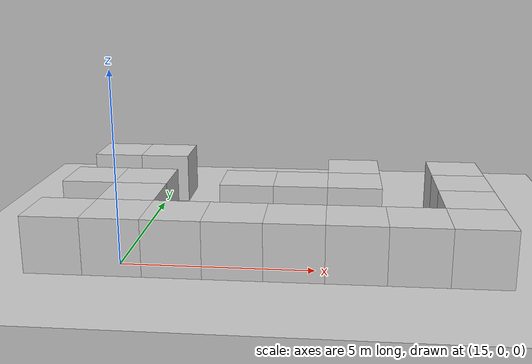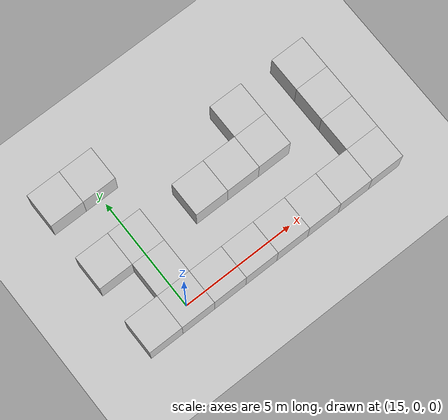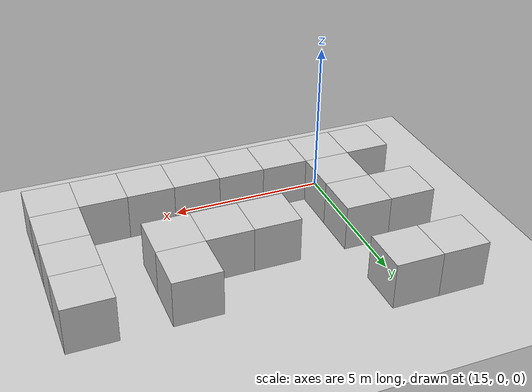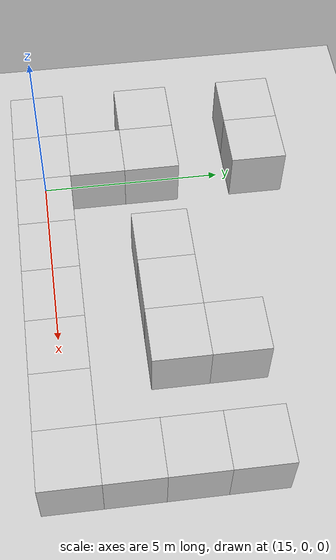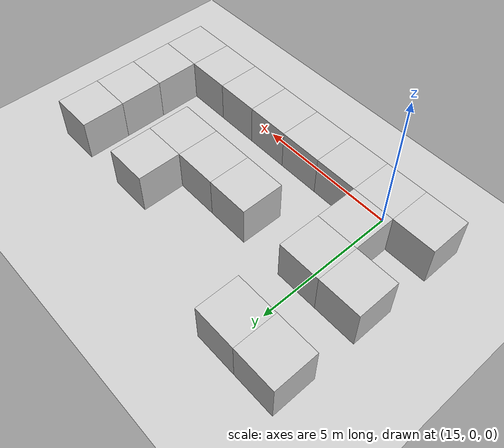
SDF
<sdf version="1.9">
 <world name="maze_world">
  <include><uri>https://fuel.gazebosim.org/1.0/OpenRobotics/models/Sun</uri></include>
  <include><uri>https://fuel.gazebosim.org/1.0/OpenRobotics/models/Ground Plane</uri></include>
  <model name="wall_9_0">
   <static>true</static>
   <pose>13.5 0 0.75 0 0 0</pose>
   <link name="link">
    <collision name="collision"><geometry><box><size>1.5 1.5 1.5</size></box></geometry></collision>
    <visual name="visual">
     <geometry><box><size>1.5 1.5 1.5</size></box></geometry>
     <material>
      <ambient>0.8 0.8 0.8 1</ambient>
      <diffuse>0.8 0.8 0.8 1</diffuse>
      <pbr>
       <metal>
        <albedo_map>file:///home/max/Repos/DHBW-Robotik/maze_runner_ws/src/maze_runner_gazebo/textures/simple_box.png</albedo_map>
        <roughness>0.9</roughness>
       </metal>
      </pbr>
     </material>
    </visual>
   </link>
  </model>
  <model name="wall_10_0">
   <static>true</static>
   <pose>15 0 0.75 0 0 0</pose>
   <link name="link">
    <collision name="collision"><geometry><box><size>1.5 1.5 1.5</size></box></geometry></collision>
    <visual name="visual">
     <geometry><box><size>1.5 1.5 1.5</size></box></geometry>
     <material>
      <ambient>0.8 0.8 0.8 1</ambient>
      <diffuse>0.8 0.8 0.8 1</diffuse>
      <pbr>
       <metal>
        <albedo_map>file:///home/max/Repos/DHBW-Robotik/maze_runner_ws/src/maze_runner_gazebo/textures/simple_box.png</albedo_map>
        <roughness>0.9</roughness>
       </metal>
      </pbr>
     </material>
    </visual>
   </link>
  </model>
  <model name="wall_11_0">
   <static>true</static>
   <pose>16.5 0 0.75 0 0 0</pose>
   <link name="link">
    <collision name="collision"><geometry><box><size>1.5 1.5 1.5</size></box></geometry></collision>
    <visual name="visual">
     <geometry><box><size>1.5 1.5 1.5</size></box></geometry>
     <material>
      <ambient>0.8 0.8 0.8 1</ambient>
      <diffuse>0.8 0.8 0.8 1</diffuse>
      <pbr>
       <metal>
        <albedo_map>file:///home/max/Repos/DHBW-Robotik/maze_runner_ws/src/maze_runner_gazebo/textures/simple_box.png</albedo_map>
        <roughness>0.9</roughness>
       </metal>
      </pbr>
     </material>
    </visual>
   </link>
  </model>
  <model name="wall_12_0">
   <static>true</static>
   <pose>18 0 0.75 0 0 0</pose>
   <link name="link">
    <collision name="collision"><geometry><box><size>1.5 1.5 1.5</size></box></geometry></collision>
    <visual name="visual">
     <geometry><box><size>1.5 1.5 1.5</size></box></geometry>
     <material>
      <ambient>0.8 0.8 0.8 1</ambient>
      <diffuse>0.8 0.8 0.8 1</diffuse>
      <pbr>
       <metal>
        <albedo_map>file:///home/max/Repos/DHBW-Robotik/maze_runner_ws/src/maze_runner_gazebo/textures/simple_box.png</albedo_map>
        <roughness>0.9</roughness>
       </metal>
      </pbr>
     </material>
    </visual>
   </link>
  </model>
  <model name="wall_13_0">
   <static>true</static>
   <pose>19.5 0 0.75 0 0 0</pose>
   <link name="link">
    <collision name="collision"><geometry><box><size>1.5 1.5 1.5</size></box></geometry></collision>
    <visual name="visual">
     <geometry><box><size>1.5 1.5 1.5</size></box></geometry>
     <material>
      <ambient>0.8 0.8 0.8 1</ambient>
      <diffuse>0.8 0.8 0.8 1</diffuse>
      <pbr>
       <metal>
        <albedo_map>file:///home/max/Repos/DHBW-Robotik/maze_runner_ws/src/maze_runner_gazebo/textures/simple_box.png</albedo_map>
        <roughness>0.9</roughness>
       </metal>
      </pbr>
     </material>
    </visual>
   </link>
  </model>
  <model name="wall_14_0">
   <static>true</static>
   <pose>21 0 0.75 0 0 0</pose>
   <link name="link">
    <collision name="collision"><geometry><box><size>1.5 1.5 1.5</size></box></geometry></collision>
    <visual name="visual">
     <geometry><box><size>1.5 1.5 1.5</size></box></geometry>
     <material>
      <ambient>0.8 0.8 0.8 1</ambient>
      <diffuse>0.8 0.8 0.8 1</diffuse>
      <pbr>
       <metal>
        <albedo_map>file:///home/max/Repos/DHBW-Robotik/maze_runner_ws/src/maze_runner_gazebo/textures/simple_box.png</albedo_map>
        <roughness>0.9</roughness>
       </metal>
      </pbr>
     </material>
    </visual>
   </link>
  </model>
  <model name="wall_15_0">
   <static>true</static>
   <pose>22.5 0 0.75 0 0 0</pose>
   <link name="link">
    <collision name="collision"><geometry><box><size>1.5 1.5 1.5</size></box></geometry></collision>
    <visual name="visual">
     <geometry><box><size>1.5 1.5 1.5</size></box></geometry>
     <material>
      <ambient>0.8 0.8 0.8 1</ambient>
      <diffuse>0.8 0.8 0.8 1</diffuse>
      <pbr>
       <metal>
        <albedo_map>file:///home/max/Repos/DHBW-Robotik/maze_runner_ws/src/maze_runner_gazebo/textures/simple_box.png</albedo_map>
        <roughness>0.9</roughness>
       </metal>
      </pbr>
     </material>
    </visual>
   </link>
  </model>
  <model name="wall_16_0">
   <static>true</static>
   <pose>24 0 0.75 0 0 0</pose>
   <link name="link">
    <collision name="collision"><geometry><box><size>1.5 1.5 1.5</size></box></geometry></collision>
    <visual name="visual">
     <geometry><box><size>1.5 1.5 1.5</size></box></geometry>
     <material>
      <ambient>0.8 0.8 0.8 1</ambient>
      <diffuse>0.8 0.8 0.8 1</diffuse>
      <pbr>
       <metal>
        <albedo_map>file:///home/max/Repos/DHBW-Robotik/maze_runner_ws/src/maze_runner_gazebo/textures/simple_box.png</albedo_map>
        <roughness>0.9</roughness>
       </metal>
      </pbr>
     </material>
    </visual>
   </link>
  </model>
  <model name="wall_10_1">
   <static>true</static>
   <pose>15 1.5 0.75 0 0 0</pose>
   <link name="link">
    <collision name="collision"><geometry><box><size>1.5 1.5 1.5</size></box></geometry></collision>
    <visual name="visual">
     <geometry><box><size>1.5 1.5 1.5</size></box></geometry>
     <material>
      <ambient>0.8 0.8 0.8 1</ambient>
      <diffuse>0.8 0.8 0.8 1</diffuse>
      <pbr>
       <metal>
        <albedo_map>file:///home/max/Repos/DHBW-Robotik/maze_runner_ws/src/maze_runner_gazebo/textures/simple_box.png</albedo_map>
        <roughness>0.9</roughness>
       </metal>
      </pbr>
     </material>
    </visual>
   </link>
  </model>
  <model name="wall_16_1">
   <static>true</static>
   <pose>24 1.5 0.75 0 0 0</pose>
   <link name="link">
    <collision name="collision"><geometry><box><size>1.5 1.5 1.5</size></box></geometry></collision>
    <visual name="visual">
     <geometry><box><size>1.5 1.5 1.5</size></box></geometry>
     <material>
      <ambient>0.8 0.8 0.8 1</ambient>
      <diffuse>0.8 0.8 0.8 1</diffuse>
      <pbr>
       <metal>
        <albedo_map>file:///home/max/Repos/DHBW-Robotik/maze_runner_ws/src/maze_runner_gazebo/textures/simple_box.png</albedo_map>
        <roughness>0.9</roughness>
       </metal>
      </pbr>
     </material>
    </visual>
   </link>
  </model>
  <model name="wall_9_2">
   <static>true</static>
   <pose>13.5 3 0.75 0 0 0</pose>
   <link name="link">
    <collision name="collision"><geometry><box><size>1.5 1.5 1.5</size></box></geometry></collision>
    <visual name="visual">
     <geometry><box><size>1.5 1.5 1.5</size></box></geometry>
     <material>
      <ambient>0.8 0.8 0.8 1</ambient>
      <diffuse>0.8 0.8 0.8 1</diffuse>
      <pbr>
       <metal>
        <albedo_map>file:///home/max/Repos/DHBW-Robotik/maze_runner_ws/src/maze_runner_gazebo/textures/simple_box.png</albedo_map>
        <roughness>0.9</roughness>
       </metal>
      </pbr>
     </material>
    </visual>
   </link>
  </model>
  <model name="wall_10_2">
   <static>true</static>
   <pose>15 3 0.75 0 0 0</pose>
   <link name="link">
    <collision name="collision"><geometry><box><size>1.5 1.5 1.5</size></box></geometry></collision>
    <visual name="visual">
     <geometry><box><size>1.5 1.5 1.5</size></box></geometry>
     <material>
      <ambient>0.8 0.8 0.8 1</ambient>
      <diffuse>0.8 0.8 0.8 1</diffuse>
      <pbr>
       <metal>
        <albedo_map>file:///home/max/Repos/DHBW-Robotik/maze_runner_ws/src/maze_runner_gazebo/textures/simple_box.png</albedo_map>
        <roughness>0.9</roughness>
       </metal>
      </pbr>
     </material>
    </visual>
   </link>
  </model>
  <model name="wall_12_2">
   <static>true</static>
   <pose>18 3 0.75 0 0 0</pose>
   <link name="link">
    <collision name="collision"><geometry><box><size>1.5 1.5 1.5</size></box></geometry></collision>
    <visual name="visual">
     <geometry><box><size>1.5 1.5 1.5</size></box></geometry>
     <material>
      <ambient>0.8 0.8 0.8 1</ambient>
      <diffuse>0.8 0.8 0.8 1</diffuse>
      <pbr>
       <metal>
        <albedo_map>file:///home/max/Repos/DHBW-Robotik/maze_runner_ws/src/maze_runner_gazebo/textures/simple_box.png</albedo_map>
        <roughness>0.9</roughness>
       </metal>
      </pbr>
     </material>
    </visual>
   </link>
  </model>
  <model name="wall_13_2">
   <static>true</static>
   <pose>19.5 3 0.75 0 0 0</pose>
   <link name="link">
    <collision name="collision"><geometry><box><size>1.5 1.5 1.5</size></box></geometry></collision>
    <visual name="visual">
     <geometry><box><size>1.5 1.5 1.5</size></box></geometry>
     <material>
      <ambient>0.8 0.8 0.8 1</ambient>
      <diffuse>0.8 0.8 0.8 1</diffuse>
      <pbr>
       <metal>
        <albedo_map>file:///home/max/Repos/DHBW-Robotik/maze_runner_ws/src/maze_runner_gazebo/textures/simple_box.png</albedo_map>
        <roughness>0.9</roughness>
       </metal>
      </pbr>
     </material>
    </visual>
   </link>
  </model>
  <model name="wall_14_2">
   <static>true</static>
   <pose>21 3 0.75 0 0 0</pose>
   <link name="link">
    <collision name="collision"><geometry><box><size>1.5 1.5 1.5</size></box></geometry></collision>
    <visual name="visual">
     <geometry><box><size>1.5 1.5 1.5</size></box></geometry>
     <material>
      <ambient>0.8 0.8 0.8 1</ambient>
      <diffuse>0.8 0.8 0.8 1</diffuse>
      <pbr>
       <metal>
        <albedo_map>file:///home/max/Repos/DHBW-Robotik/maze_runner_ws/src/maze_runner_gazebo/textures/simple_box.png</albedo_map>
        <roughness>0.9</roughness>
       </metal>
      </pbr>
     </material>
    </visual>
   </link>
  </model>
  <model name="wall_16_2">
   <static>true</static>
   <pose>24 3 0.75 0 0 0</pose>
   <link name="link">
    <collision name="collision"><geometry><box><size>1.5 1.5 1.5</size></box></geometry></collision>
    <visual name="visual">
     <geometry><box><size>1.5 1.5 1.5</size></box></geometry>
     <material>
      <ambient>0.8 0.8 0.8 1</ambient>
      <diffuse>0.8 0.8 0.8 1</diffuse>
      <pbr>
       <metal>
        <albedo_map>file:///home/max/Repos/DHBW-Robotik/maze_runner_ws/src/maze_runner_gazebo/textures/simple_box.png</albedo_map>
        <roughness>0.9</roughness>
       </metal>
      </pbr>
     </material>
    </visual>
   </link>
  </model>
  <model name="wall_14_3">
   <static>true</static>
   <pose>21 4.5 0.75 0 0 0</pose>
   <link name="link">
    <collision name="collision"><geometry><box><size>1.5 1.5 1.5</size></box></geometry></collision>
    <visual name="visual">
     <geometry><box><size>1.5 1.5 1.5</size></box></geometry>
     <material>
      <ambient>0.8 0.8 0.8 1</ambient>
      <diffuse>0.8 0.8 0.8 1</diffuse>
      <pbr>
       <metal>
        <albedo_map>file:///home/max/Repos/DHBW-Robotik/maze_runner_ws/src/maze_runner_gazebo/textures/simple_box.png</albedo_map>
        <roughness>0.9</roughness>
       </metal>
      </pbr>
     </material>
    </visual>
   </link>
  </model>
  <model name="wall_16_3">
   <static>true</static>
   <pose>24 4.5 0.75 0 0 0</pose>
   <link name="link">
    <collision name="collision"><geometry><box><size>1.5 1.5 1.5</size></box></geometry></collision>
    <visual name="visual">
     <geometry><box><size>1.5 1.5 1.5</size></box></geometry>
     <material>
      <ambient>0.8 0.8 0.8 1</ambient>
      <diffuse>0.8 0.8 0.8 1</diffuse>
      <pbr>
       <metal>
        <albedo_map>file:///home/max/Repos/DHBW-Robotik/maze_runner_ws/src/maze_runner_gazebo/textures/simple_box.png</albedo_map>
        <roughness>0.9</roughness>
       </metal>
      </pbr>
     </material>
    </visual>
   </link>
  </model>
  <model name="wall_9_4">
   <static>true</static>
   <pose>13.5 6 0.75 0 0 0</pose>
   <link name="link">
    <collision name="collision"><geometry><box><size>1.5 1.5 1.5</size></box></geometry></collision>
    <visual name="visual">
     <geometry><box><size>1.5 1.5 1.5</size></box></geometry>
     <material>
      <ambient>0.8 0.8 0.8 1</ambient>
      <diffuse>0.8 0.8 0.8 1</diffuse>
      <pbr>
       <metal>
        <albedo_map>file:///home/max/Repos/DHBW-Robotik/maze_runner_ws/src/maze_runner_gazebo/textures/simple_box.png</albedo_map>
        <roughness>0.9</roughness>
       </metal>
      </pbr>
     </material>
    </visual>
   </link>
  </model>
  <model name="wall_10_4">
   <static>true</static>
   <pose>15 6 0.75 0 0 0</pose>
   <link name="link">
    <collision name="collision"><geometry><box><size>1.5 1.5 1.5</size></box></geometry></collision>
    <visual name="visual">
     <geometry><box><size>1.5 1.5 1.5</size></box></geometry>
     <material>
      <ambient>0.8 0.8 0.8 1</ambient>
      <diffuse>0.8 0.8 0.8 1</diffuse>
      <pbr>
       <metal>
        <albedo_map>file:///home/max/Repos/DHBW-Robotik/maze_runner_ws/src/maze_runner_gazebo/textures/simple_box.png</albedo_map>
        <roughness>0.9</roughness>
       </metal>
      </pbr>
     </material>
    </visual>
   </link>
  </model>
 </world>
</sdf>
